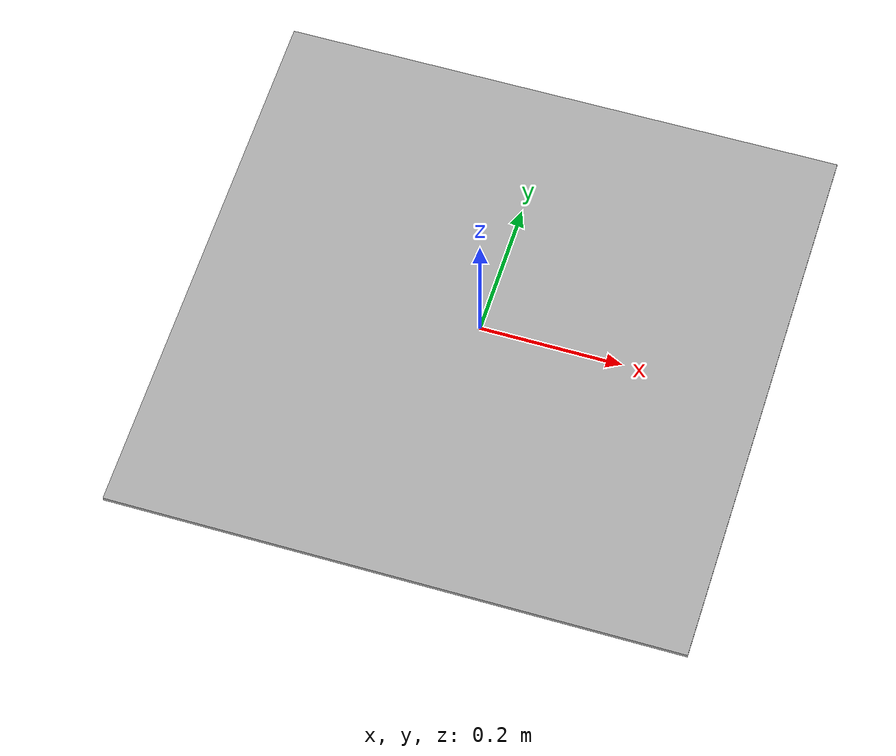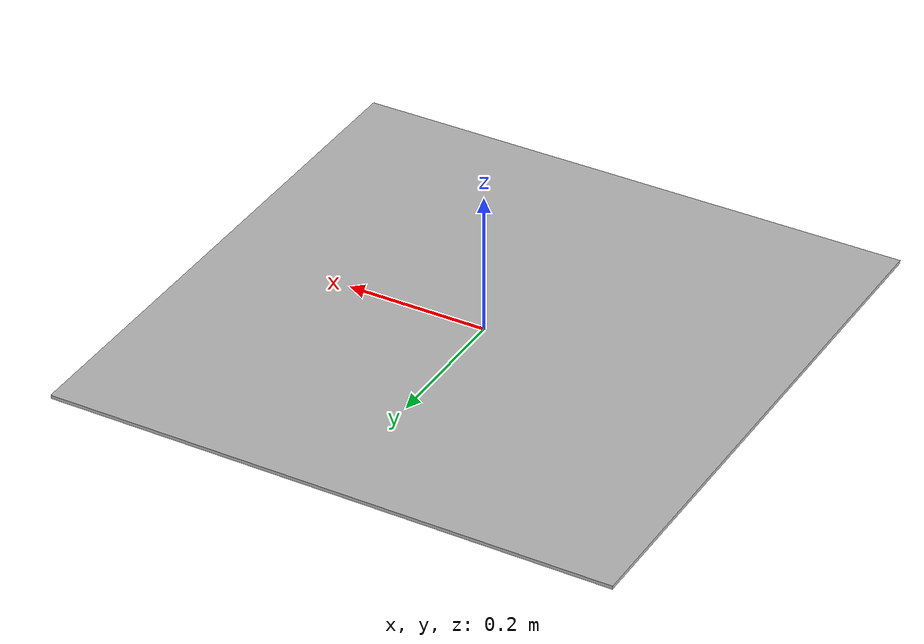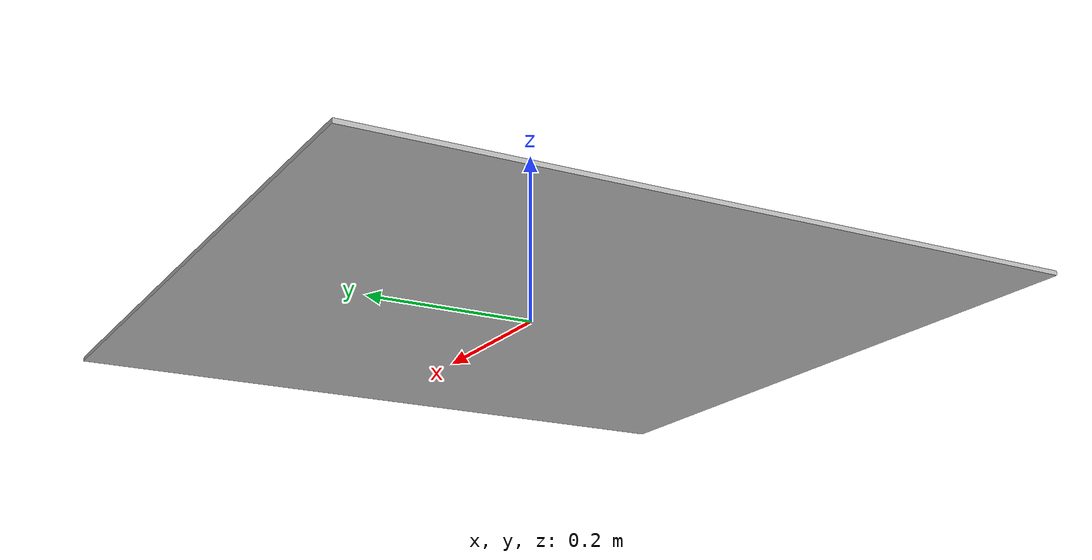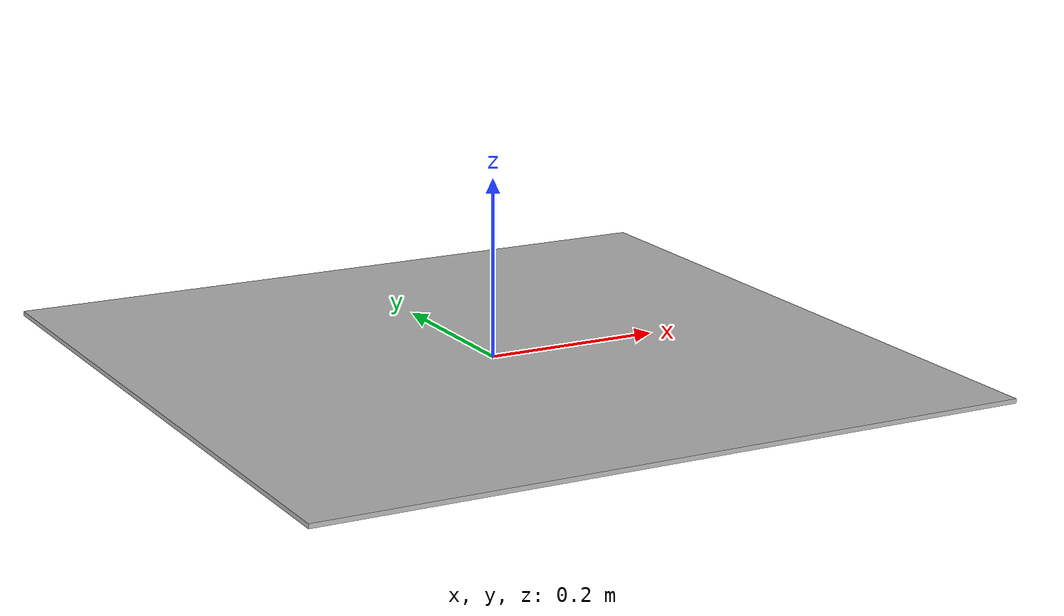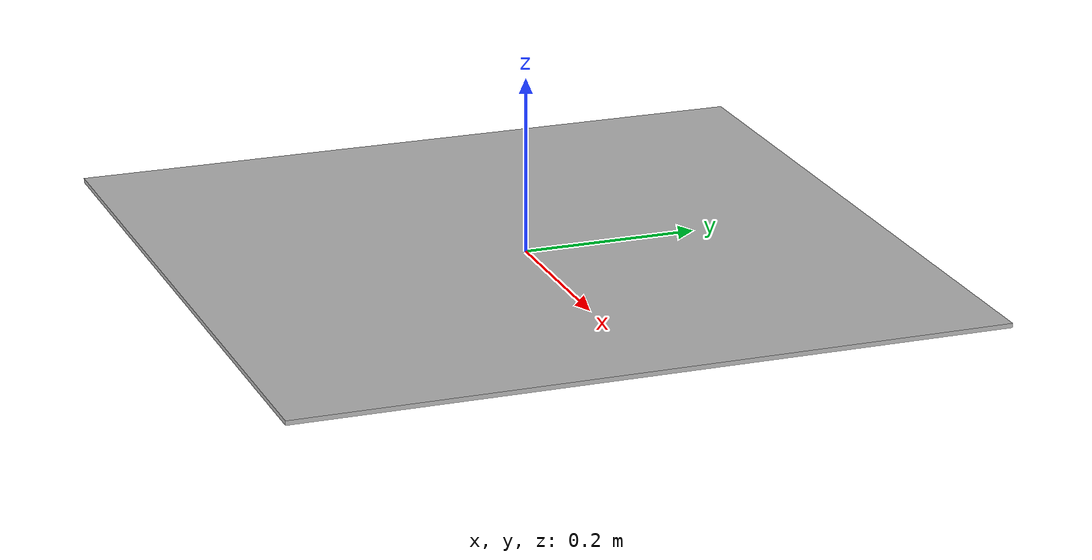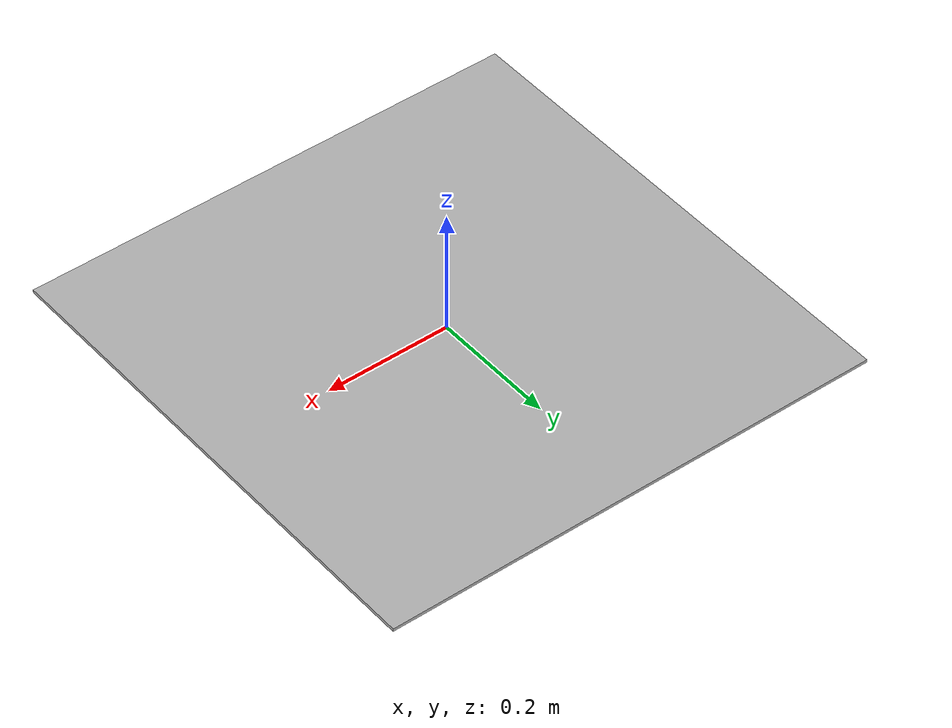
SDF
<?xml version="1.0"?>
<sdf version="1.7">
  <model name="landing_h_80cm">
    <static>true</static>
    <link name="link">
      <pose>0 0 0.0025 0 0 0</pose>
      <collision name="collision">
        <geometry>
          <box><size>0.8 0.8 0.005</size></box>
        </geometry>
      </collision>
      <visual name="visual">
        <geometry>
          <box><size>0.8 0.8 0.005</size></box>
        </geometry>
        <material>
          <script>
            <uri>model://landing_h/materials/scripts/</uri>
            <uri>model://landing_h/materials/textures/</uri>
            <name>Mark/LandingH</name>
          </script>
        </material>
        <cast_shadows>true</cast_shadows>
        <receive_shadows>true</receive_shadows>
      </visual>
    </link>
  </model>
</sdf>
